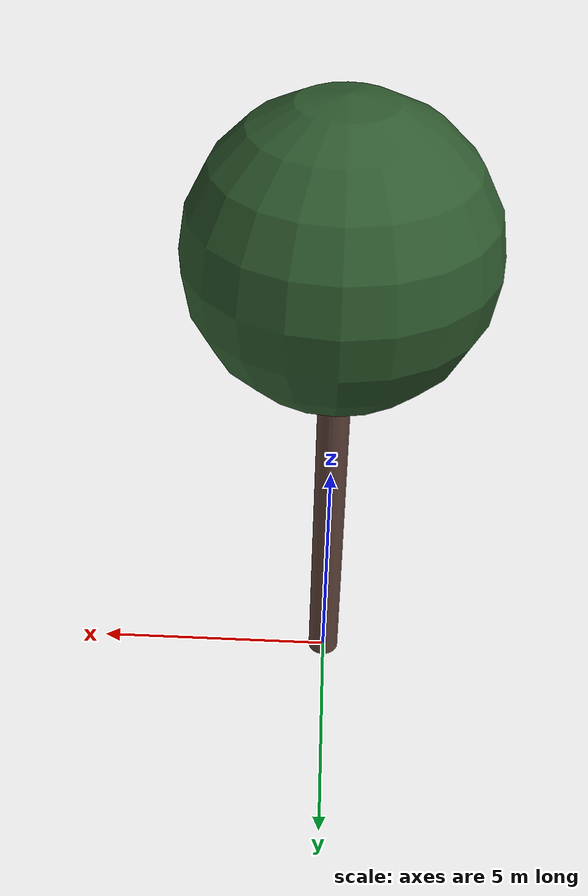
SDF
<?xml version="1.0" ?>
<sdf version="1.10">
  <model name="pin_parasol_05">
    <static>true</static>

    <!-- Tronc -->
    <link name="trunk">
      <pose>0 0 4.59393633812576 0 0 0</pose>
      <visual name="trunk_visual">
        <geometry>
          <cylinder>
            <radius>0.3219368523694928</radius>
            <length>9.18787267625152</length>
          </cylinder>
        </geometry>
        <material>
          <ambient>0.36 0.25 0.22 1</ambient>
          <diffuse>0.36 0.25 0.22 1</diffuse>
          <specular>0.1 0.1 0.1 1</specular>
        </material>
      </visual>
      <collision name="trunk_collision">
        <geometry>
          <cylinder>
            <radius>0.3219368523694928</radius>
            <length>9.18787267625152</length>
          </cylinder>
        </geometry>
      </collision>
    </link>

    <!-- Feuillage -->
    <link name="crown">
      <pose>0 0 10.061618500234824 0 0 0</pose>
      <visual name="crown_visual">
        <geometry>
          <sphere>
              <radius>2.9124860799443457</radius>
            </sphere>
        </geometry>
        <material>
          <ambient>0.18 0.35 0.18 1</ambient>
          <diffuse>0.18 0.35 0.18 1</diffuse>
          <specular>0.1 0.1 0.1 1</specular>
        </material>
      </visual>
      <collision name="crown_collision">
        <geometry>
          <sphere>
            <radius>2.3299888639554767</radius>
          </sphere>
        </geometry>
      </collision>
    </link>

    <!-- Joint tronc-feuillage -->
    <joint name="trunk_crown_joint" type="fixed">
      <parent>trunk</parent>
      <child>crown</child>
    </joint>

  </model>
</sdf>
